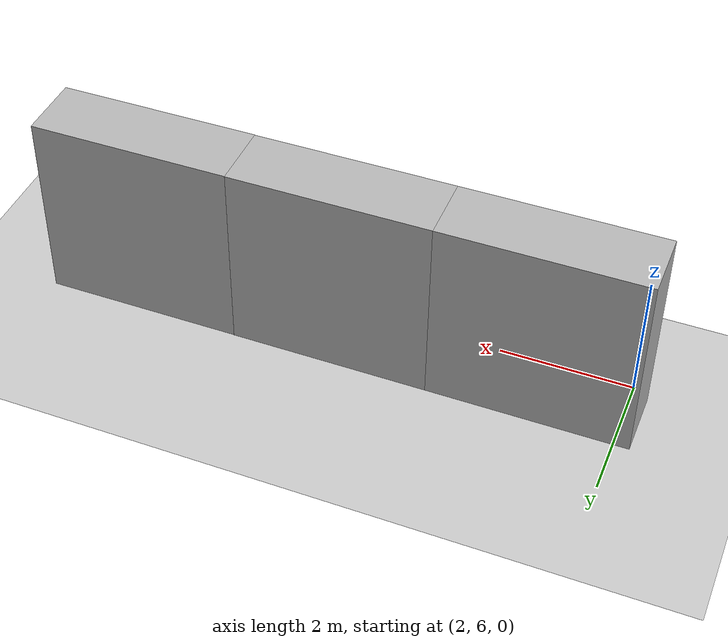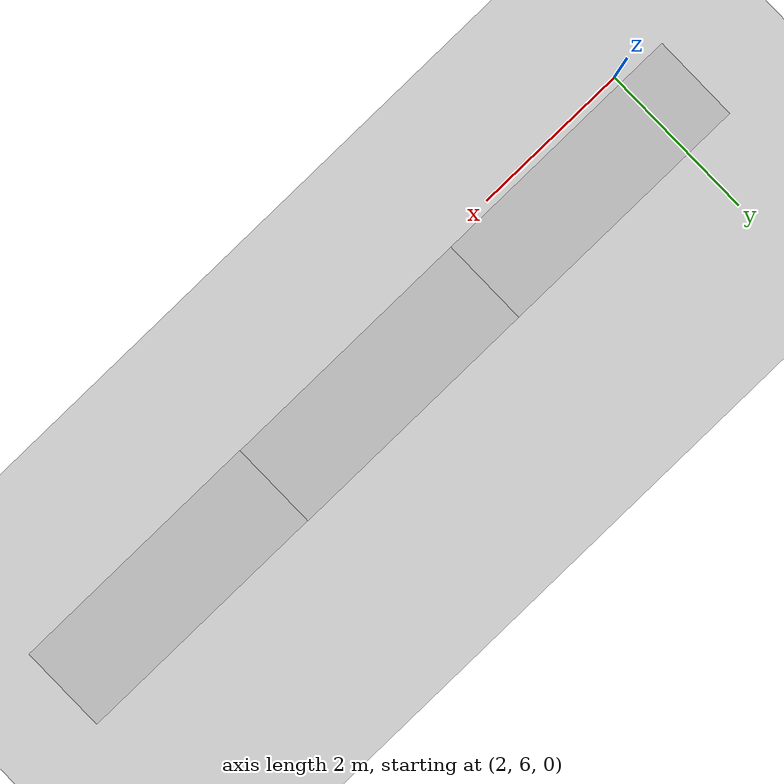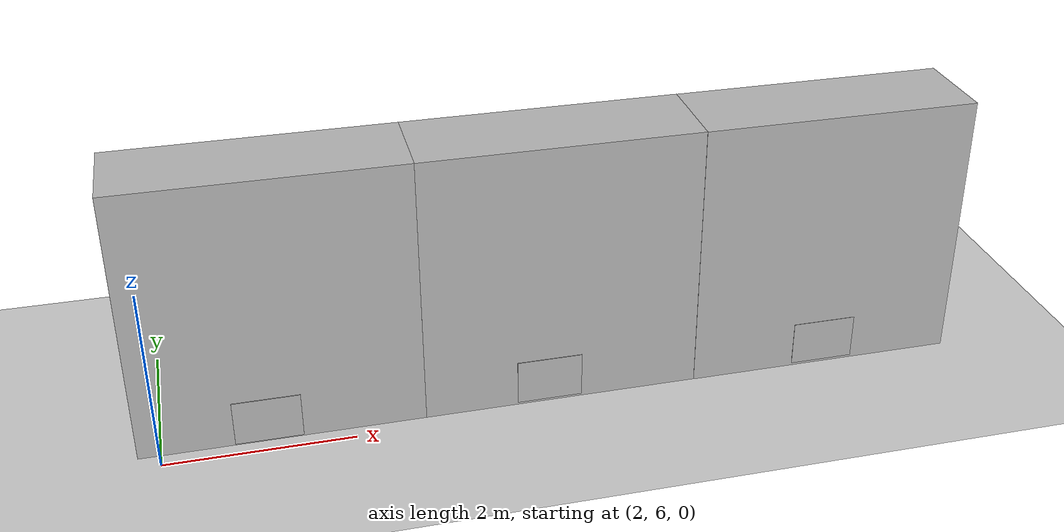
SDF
<sdf version="1.7">
 <world name="default">
  <light name="sun" type="directional">
   <pose>0 0 10 0 -0 0</pose>
   <diffuse>0.8 0.8 0.8 1</diffuse>
   <specular>0.2 0.2 0.2 1</specular>
   <attenuation>
    <range>1000</range>
    <constant>0.9</constant>
    <linear>0.01</linear>
    <quadratic>0.001</quadratic>
   </attenuation>
   <direction>-0.5 0.1 -0.9</direction>
   <spot><inner_angle>0</inner_angle><outer_angle>0</outer_angle><falloff>0</falloff></spot>
  </light>
  <model name="ground_plane">
   <static>1</static>
   <link name="link">
    <collision name="collision">
     <geometry><plane><normal>0 0 1</normal><size>100 100</size></plane></geometry>
     <surface><friction><ode><mu>100</mu><mu2>50</mu2></ode></friction></surface>
    </collision>
    <visual name="visual">
     <cast_shadows>0</cast_shadows>
     <geometry><plane><normal>0 0 1</normal><size>100 100</size></plane></geometry>
     <material>
      <script><uri>file://media/materials/scripts/gazebo.material</uri><name>Gazebo/Grey</name></script>
     </material>
    </visual>
   </link>
  </model>
  <gravity>0 0 -9.8</gravity>
  <magnetic_field>6e-06 2.3e-05 -4.2e-05</magnetic_field>
  <atmosphere type="adiabatic"/>
  <physics type="ode">
   <max_step_size>0.001</max_step_size>
   <real_time_factor>1</real_time_factor>
   <real_time_update_rate>1000</real_time_update_rate>
  </physics>
  <scene><ambient>0.4 0.4 0.4 1</ambient><background>0.7 0.7 0.7 1</background><shadows>1</shadows></scene>
  <audio><device>default</device></audio>
  <spherical_coordinates>
   <surface_model>EARTH_WGS84</surface_model>
   <latitude_deg>0</latitude_deg>
   <longitude_deg>0</longitude_deg>
   <elevation>0</elevation>
   <heading_deg>0</heading_deg>
  </spherical_coordinates>
  <model name="brick_box_3x1x3">
   <static>1</static>
   <link name="chassis">
    <pose>0 0 1.5 0 -0 0</pose>
    <collision name="collision"><geometry><box><size>3 1 3</size></box></geometry></collision>
    <visual name="visual">
     <geometry><mesh><uri>model://brick_box_3x1x3/meshes/simple_box.dae</uri><scale>3 1 3</scale></mesh></geometry>
     <material>
      <script>
       <uri>model://brick_box_3x1x3/materials/scripts</uri>
       <uri>model://brick_box_3x1x3/materials/textures</uri>
       <name>BrickBox/Diffuse</name>
      </script>
     </material>
    </visual>
   </link>
   <pose>3.26491 6.66219 0 0 -0 0</pose>
  </model>
  <model name="brick_box_3x1x3_0">
   <static>1</static>
   <link name="chassis">
    <pose>0 0 1.5 0 -0 0</pose>
    <collision name="collision"><geometry><box><size>3 1 3</size></box></geometry></collision>
    <visual name="visual">
     <geometry><mesh><uri>model://brick_box_3x1x3/meshes/simple_box.dae</uri><scale>3 1 3</scale></mesh></geometry>
     <material>
      <script>
       <uri>model://brick_box_3x1x3/materials/scripts</uri>
       <uri>model://brick_box_3x1x3/materials/textures</uri>
       <name>BrickBox/Diffuse</name>
      </script>
     </material>
    </visual>
   </link>
   <pose>6.26197 6.66211 0 0 -0 0</pose>
  </model>
  <model name="brick_box_3x1x3_1">
   <static>1</static>
   <link name="chassis">
    <pose>0 0 1.5 0 -0 0</pose>
    <collision name="collision"><geometry><box><size>3 1 3</size></box></geometry></collision>
    <visual name="visual">
     <geometry><mesh><uri>model://brick_box_3x1x3/meshes/simple_box.dae</uri><scale>3 1 3</scale></mesh></geometry>
     <material>
      <script>
       <uri>model://brick_box_3x1x3/materials/scripts</uri>
       <uri>model://brick_box_3x1x3/materials/textures</uri>
       <name>BrickBox/Diffuse</name>
      </script>
     </material>
    </visual>
   </link>
   <pose>9.26078 6.65832 0 0 -0 0</pose>
  </model>
  <light name="user_point_light_0" type="point">
   <pose>6.16124 -1.98277 1 0 -0 0</pose>
   <diffuse>0.5 0.5 0.5 1</diffuse>
   <specular>0.1 0.1 0.1 1</specular>
   <attenuation>
    <range>20</range>
    <constant>0.5</constant>
    <linear>0.01</linear>
    <quadratic>0.001</quadratic>
   </attenuation>
   <cast_shadows>0</cast_shadows>
   <direction>0 0 -1</direction>
  </light>
  <model name="space1">
   <static>1</static>
   <link name="robot_link">
    <collision name="body_collision"><geometry><box><size>0.5 0.01 0.5</size></box></geometry></collision>
    <visual name="body_visual">
     <geometry><box><size>0.707 0.01 0.5</size></box></geometry>
     <material>
      <script>
       <uri>model://photoframe1/materials/scripts/</uri>
       <uri>model://photoframe1/materials/textures/</uri>
       <name>RepeatedTexture1</name>
      </script>
     </material>
    </visual>
   </link>
   <pose>3.10862 6.13942 0.278773 0 -0 0</pose>
  </model>
  <model name="space2">
   <static>1</static>
   <link name="robot_link">
    <collision name="body_collision"><geometry><box><size>0.5 0.01 0.5</size></box></geometry></collision>
    <visual name="body_visual">
     <geometry><box><size>0.707 0.01 0.5</size></box></geometry>
     <material>
      <script>
       <uri>model://photoframe2/materials/scripts/</uri>
       <uri>model://photoframe2/materials/textures/</uri>
       <name>RepeatedTexture2</name>
      </script>
     </material>
    </visual>
   </link>
   <pose>9.27233 6.15787 0.278773 0 -0 0</pose>
  </model>
  <model name="space3">
   <static>1</static>
   <link name="robot_link">
    <collision name="body_collision"><geometry><box><size>0.5 0.01 0.5</size></box></geometry></collision>
    <visual name="body_visual">
     <geometry><box><size>0.707 0.01 0.5</size></box></geometry>
     <material>
      <script>
       <uri>model://photoframe3/materials/scripts/</uri>
       <uri>model://photoframe3/materials/textures/</uri>
       <name>RepeatedTexture3</name>
      </script>
     </material>
    </visual>
   </link>
   <pose>6.1168 6.15787 0.278773 0 -0 0</pose>
  </model>
 </world>
</sdf>
